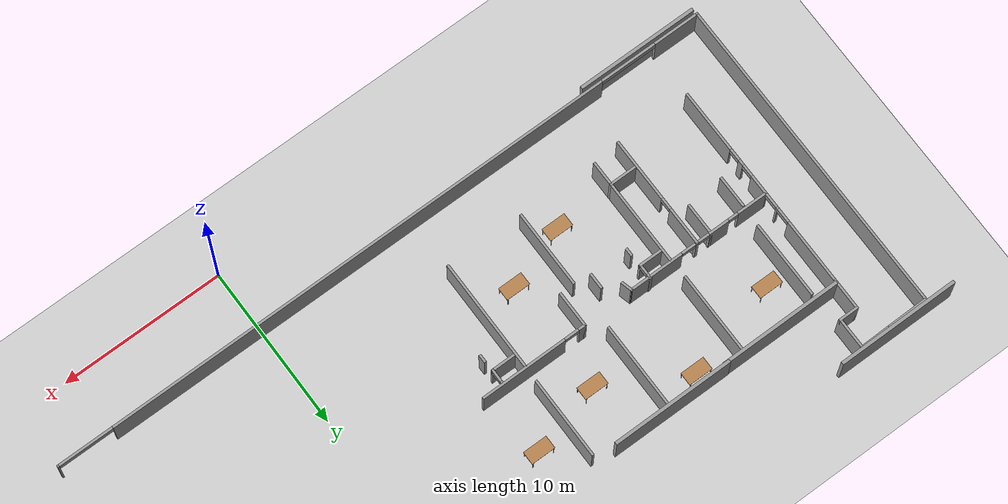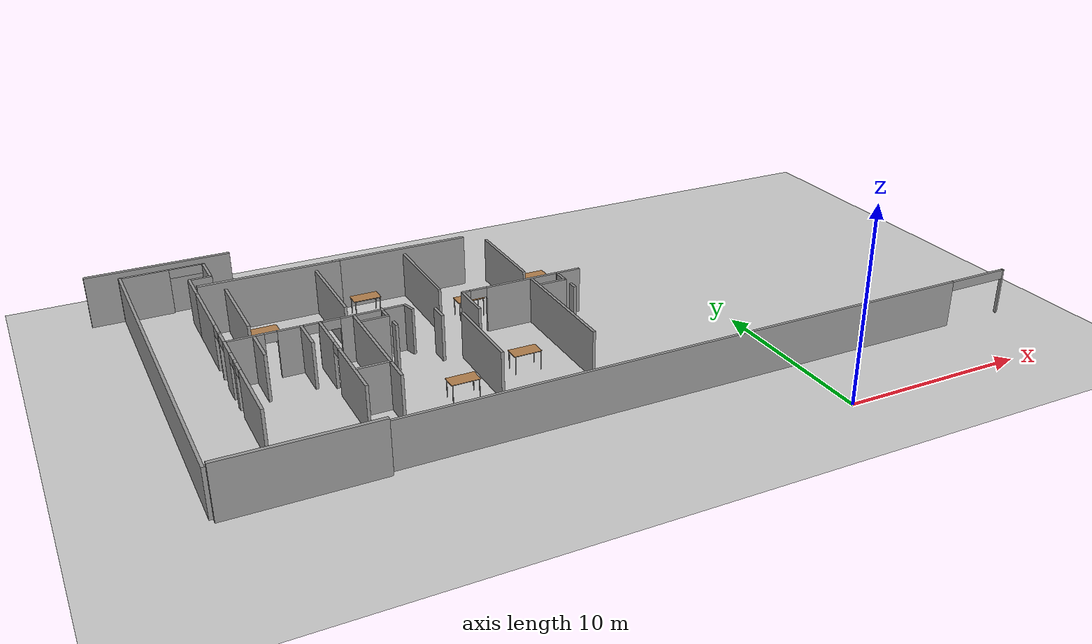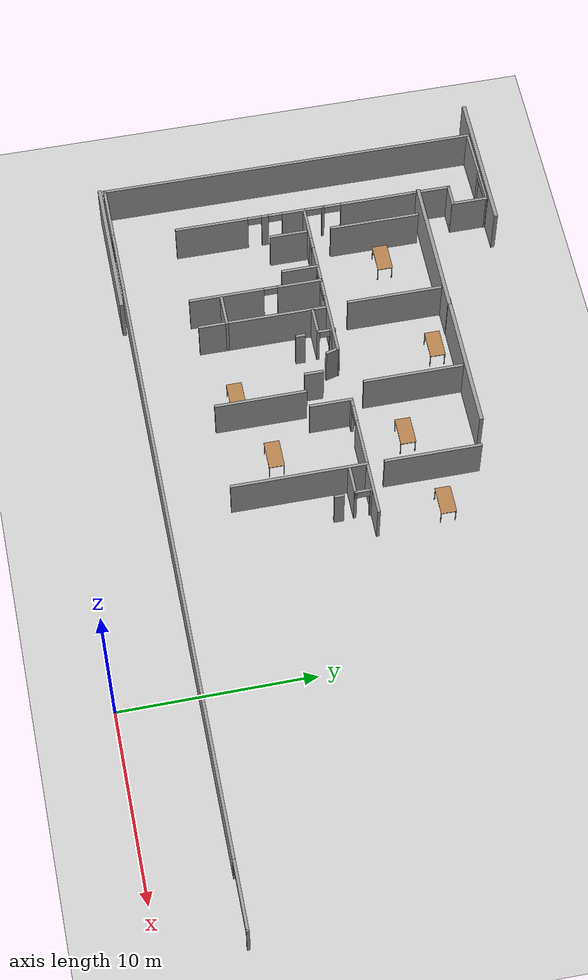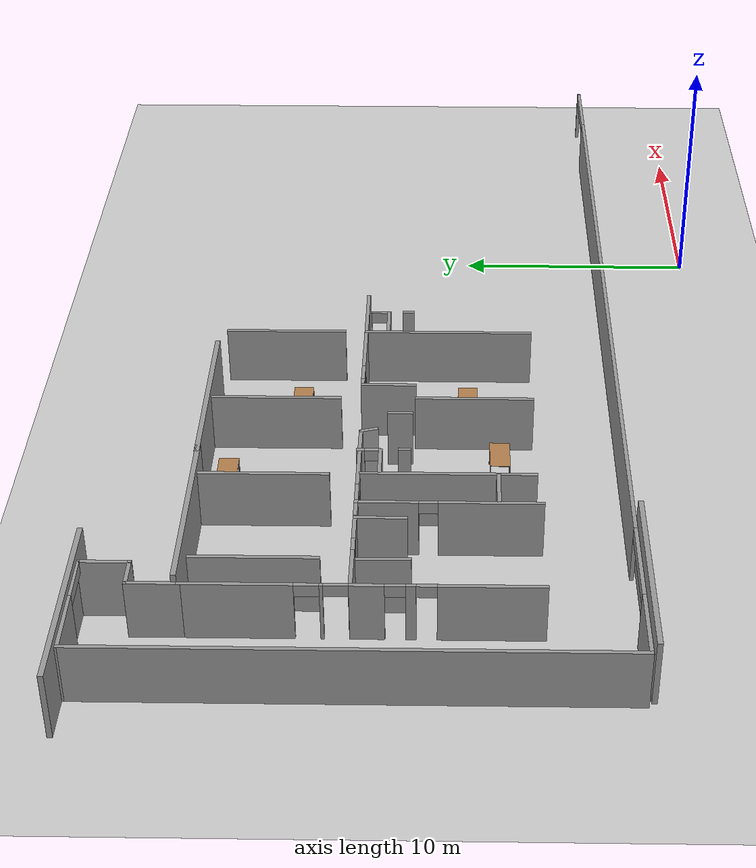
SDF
<sdf version="1.6">
 <world name="default">
  <model name="ground_plane">
   <static>1</static>
   <link name="link">
    <collision name="collision">
     <geometry><plane><normal>0 0 1</normal><size>100 100</size></plane></geometry>
     <surface><friction><ode><mu>100</mu><mu2>50</mu2></ode></friction></surface>
    </collision>
    <visual name="visual">
     <cast_shadows>0</cast_shadows>
     <geometry><plane><normal>0 0 1</normal><size>100 100</size></plane></geometry>
     <material>
      <script><uri>file://media/materials/scripts/gazebo.material</uri><name>Gazebo/Grey</name></script>
     </material>
    </visual>
   </link>
  </model>
  <model name="fin_se1f1.sdf">
   <pose>1.83798 -2.38449 0.2 0 -0 0</pose>
   <link name="Wall_0">
    <collision name="Wall_0_Collision">
     <geometry><box><size>20 0.15 2.5</size></box></geometry>
     <pose>0 0 1.25 0 -0 0</pose>
    </collision>
    <visual name="Wall_0_Visual">
     <pose>0 0 1.25 0 -0 0</pose>
     <geometry><box><size>20 0.15 2.5</size></box></geometry>
     <material>
      <script><uri>file://media/materials/scripts/gazebo.material</uri><name>Gazebo/Grey</name></script>
      <ambient>1 1 1 1</ambient>
     </material>
     <meta><layer>0</layer></meta>
    </visual>
    <pose>-30.7496 16.4496 0 0 0 -1.5708</pose>
   </link>
   <link name="Wall_1">
    <pose>-9.82457 6.52457 0 0 -0 0</pose>
    <visual name="Wall_1_Visual_0">
     <pose>-19.528 0 1.25 0 -0 0</pose>
     <geometry><box><size>2.94395 0.15 2.5</size></box></geometry>
     <material>
      <script><uri>file://media/materials/scripts/gazebo.material</uri><name>Gazebo/Grey</name></script>
      <ambient>1 1 1 1</ambient>
     </material>
     <meta><layer>0</layer></meta>
    </visual>
    <collision name="Wall_1_Collision_0">
     <geometry><box><size>2.94395 0.15 2.5</size></box></geometry>
     <pose>-19.528 0 1.25 0 -0 0</pose>
    </collision>
    <visual name="Wall_1_Visual_1">
     <pose>1.49202 0 1.25 0 -0 0</pose>
     <geometry><box><size>31.9924 0.15 2.5</size></box></geometry>
     <material>
      <script><uri>file://media/materials/scripts/gazebo.material</uri><name>Gazebo/Grey</name></script>
      <ambient>1 1 1 1</ambient>
     </material>
     <meta><layer>0</layer></meta>
    </visual>
    <collision name="Wall_1_Collision_1">
     <geometry><box><size>31.9924 0.15 2.5</size></box></geometry>
     <pose>1.49202 0 1.25 0 -0 0</pose>
    </collision>
    <visual name="Wall_1_Visual_2">
     <pose>20.9503 0 1.25 0 -0 0</pose>
     <geometry><box><size>0.099489 0.15 2.5</size></box></geometry>
     <material>
      <script><uri>file://media/materials/scripts/gazebo.material</uri><name>Gazebo/Grey</name></script>
      <ambient>1 1 1 1</ambient>
     </material>
     <meta><layer>0</layer></meta>
    </visual>
    <collision name="Wall_1_Collision_2">
     <geometry><box><size>0.099489 0.15 2.5</size></box></geometry>
     <pose>20.9503 0 1.25 0 -0 0</pose>
    </collision>
    <visual name="Wall_1_Visual_3">
     <pose>-16.2801 0 2.25 0 -0 0</pose>
     <geometry><box><size>3.55186 0.15 0.5</size></box></geometry>
     <material>
      <script><uri>file://media/materials/scripts/gazebo.material</uri><name>Gazebo/Grey</name></script>
      <ambient>1 1 1 1</ambient>
     </material>
     <meta><layer>0</layer></meta>
    </visual>
    <collision name="Wall_1_Collision_3">
     <geometry><box><size>3.55186 0.15 0.5</size></box></geometry>
     <pose>-16.2801 0 2.25 0 -0 0</pose>
    </collision>
    <visual name="Wall_1_Visual_4">
     <pose>19.1944 0 2.25 0 -0 0</pose>
     <geometry><box><size>3.41229 0.15 0.5</size></box></geometry>
     <material>
      <script><uri>file://media/materials/scripts/gazebo.material</uri><name>Gazebo/Grey</name></script>
      <ambient>1 1 1 1</ambient>
     </material>
     <meta><layer>0</layer></meta>
    </visual>
    <collision name="Wall_1_Collision_4">
     <geometry><box><size>3.41229 0.15 0.5</size></box></geometry>
     <pose>19.1944 0 2.25 0 -0 0</pose>
    </collision>
   </link>
   <link name="Wall_100">
    <collision name="Wall_100_Collision">
     <geometry><box><size>2.25 0.15 2.5</size></box></geometry>
     <pose>0 0 1.25 0 -0 0</pose>
    </collision>
    <visual name="Wall_100_Visual">
     <pose>0 0 1.25 0 -0 0</pose>
     <geometry><box><size>2.25 0.15 2.5</size></box></geometry>
     <material>
      <script><uri>file://media/materials/scripts/gazebo.material</uri><name>Gazebo/Grey</name></script>
      <ambient>1 1 1 1</ambient>
     </material>
     <meta><layer>0</layer></meta>
    </visual>
    <pose>-15.464 15.7396 0 0 -0 1.5708</pose>
   </link>
   <link name="Wall_101">
    <pose>-12.164 16.7896 0 0 -0 0</pose>
    <visual name="Wall_101_Visual_0">
     <pose>-3.13147 0 1.25 0 -0 0</pose>
     <geometry><box><size>0.487063 0.15 2.5</size></box></geometry>
     <material>
      <script><uri>file://media/materials/scripts/gazebo.material</uri><name>Gazebo/Grey</name></script>
      <ambient>1 1 1 1</ambient>
     </material>
     <meta><layer>0</layer></meta>
    </visual>
    <collision name="Wall_101_Collision_0">
     <geometry><box><size>0.487063 0.15 2.5</size></box></geometry>
     <pose>-3.13147 0 1.25 0 -0 0</pose>
    </collision>
    <visual name="Wall_101_Visual_1">
     <pose>0.693532 0 1.25 0 -0 0</pose>
     <geometry><box><size>5.36294 0.15 2.5</size></box></geometry>
     <material>
      <script><uri>file://media/materials/scripts/gazebo.material</uri><name>Gazebo/Grey</name></script>
      <ambient>1 1 1 1</ambient>
     </material>
     <meta><layer>0</layer></meta>
    </visual>
    <collision name="Wall_101_Collision_1">
     <geometry><box><size>5.36294 0.15 2.5</size></box></geometry>
     <pose>0.693532 0 1.25 0 -0 0</pose>
    </collision>
    <visual name="Wall_101_Visual_2">
     <pose>-2.43794 0 2.25 0 -0 0</pose>
     <geometry><box><size>0.9 0.15 0.5</size></box></geometry>
     <material>
      <script><uri>file://media/materials/scripts/gazebo.material</uri><name>Gazebo/Grey</name></script>
      <ambient>1 1 1 1</ambient>
     </material>
     <meta><layer>0</layer></meta>
    </visual>
    <collision name="Wall_101_Collision_2">
     <geometry><box><size>0.9 0.15 0.5</size></box></geometry>
     <pose>-2.43794 0 2.25 0 -0 0</pose>
    </collision>
   </link>
   <link name="Wall_104">
    <collision name="Wall_104_Collision">
     <geometry><box><size>7 0.15 2.5</size></box></geometry>
     <pose>0 0 1.25 0 -0 0</pose>
    </collision>
    <visual name="Wall_104_Visual">
     <pose>0 0 1.25 0 -0 0</pose>
     <geometry><box><size>7 0.15 2.5</size></box></geometry>
     <material>
      <script><uri>file://media/materials/scripts/gazebo.material</uri><name>Gazebo/Grey</name></script>
      <ambient>1 1 1 1</ambient>
     </material>
     <meta><layer>0</layer></meta>
    </visual>
    <pose>-11.6118 13.3512 0 0 0 -1.5708</pose>
   </link>
   <link name="Wall_114">
    <collision name="Wall_114_Collision">
     <geometry><box><size>2 0.15 2.5</size></box></geometry>
     <pose>0 0 1.25 0 -0 0</pose>
    </collision>
    <visual name="Wall_114_Visual">
     <pose>0 0 1.25 0 -0 0</pose>
     <geometry><box><size>2 0.15 2.5</size></box></geometry>
     <material>
      <script><uri>file://media/materials/scripts/gazebo.material</uri><name>Gazebo/Grey</name></script>
      <ambient>1 1 1 1</ambient>
     </material>
     <meta><layer>0</layer></meta>
    </visual>
    <pose>-26.1645 15.6146 0 0 -0 1.5708</pose>
   </link>
   <link name="Wall_116">
    <collision name="Wall_116_Collision">
     <geometry><box><size>2 0.15 2.5</size></box></geometry>
     <pose>0 0 1.25 0 -0 0</pose>
    </collision>
    <visual name="Wall_116_Visual">
     <pose>0 0 1.25 0 -0 0</pose>
     <geometry><box><size>2 0.15 2.5</size></box></geometry>
     <material>
      <script><uri>file://media/materials/scripts/gazebo.material</uri><name>Gazebo/Grey</name></script>
      <ambient>1 1 1 1</ambient>
     </material>
     <meta><layer>0</layer></meta>
    </visual>
    <pose>-23.8638 15.7977 0 0 0 -1.5708</pose>
   </link>
   <link name="Wall_118">
    <collision name="Wall_118_Collision">
     <geometry><box><size>1.75 0.15 2.5</size></box></geometry>
     <pose>0 0 1.25 0 -0 0</pose>
    </collision>
    <visual name="Wall_118_Visual">
     <pose>0 0 1.25 0 -0 0</pose>
     <geometry><box><size>1.75 0.15 2.5</size></box></geometry>
     <material>
      <script><uri>file://media/materials/scripts/gazebo.material</uri><name>Gazebo/Grey</name></script>
      <ambient>1 1 1 1</ambient>
     </material>
     <meta><layer>0</layer></meta>
    </visual>
    <pose>-22.0422 11.426 0 0 -0 3.14159</pose>
   </link>
   <link name="Wall_120">
    <pose>-19.7977 16.3512 0 0 0 -1.5708</pose>
    <visual name="Wall_120_Visual_0">
     <pose>-0.341993 0 1.25 0 -0 0</pose>
     <geometry><box><size>0.316013 0.15 2.5</size></box></geometry>
     <material>
      <script><uri>file://media/materials/scripts/gazebo.material</uri><name>Gazebo/Grey</name></script>
      <ambient>1 1 1 1</ambient>
     </material>
     <meta><layer>0</layer></meta>
    </visual>
    <collision name="Wall_120_Collision_0">
     <geometry><box><size>0.316013 0.15 2.5</size></box></geometry>
     <pose>-0.341993 0 1.25 0 -0 0</pose>
    </collision>
    <visual name="Wall_120_Visual_1">
     <pose>0.158007 0 2.25 0 -0 0</pose>
     <geometry><box><size>0.683987 0.15 0.5</size></box></geometry>
     <material>
      <script><uri>file://media/materials/scripts/gazebo.material</uri><name>Gazebo/Grey</name></script>
      <ambient>1 1 1 1</ambient>
     </material>
     <meta><layer>0</layer></meta>
    </visual>
    <collision name="Wall_120_Collision_1">
     <geometry><box><size>0.683987 0.15 0.5</size></box></geometry>
     <pose>0.158007 0 2.25 0 -0 0</pose>
    </collision>
   </link>
   <link name="Wall_121">
    <collision name="Wall_121_Collision">
     <geometry><box><size>1.5 0.15 2.5</size></box></geometry>
     <pose>0 0 1.25 0 -0 0</pose>
    </collision>
    <visual name="Wall_121_Visual">
     <pose>0 0 1.25 0 -0 0</pose>
     <geometry><box><size>1.5 0.15 2.5</size></box></geometry>
     <material>
      <script><uri>file://media/materials/scripts/gazebo.material</uri><name>Gazebo/Grey</name></script>
      <ambient>1 1 1 1</ambient>
     </material>
     <meta><layer>0</layer></meta>
    </visual>
    <pose>-20.4727 15.9262 0 0 -0 3.14159</pose>
   </link>
   <link name="Wall_123">
    <collision name="Wall_123_Collision">
     <geometry><box><size>0.5 0.15 2.5</size></box></geometry>
     <pose>0 0 1.25 0 -0 0</pose>
    </collision>
    <visual name="Wall_123_Visual">
     <pose>0 0 1.25 0 -0 0</pose>
     <geometry><box><size>0.5 0.15 2.5</size></box></geometry>
     <material>
      <script><uri>file://media/materials/scripts/gazebo.material</uri><name>Gazebo/Grey</name></script>
      <ambient>1 1 1 1</ambient>
     </material>
     <meta><layer>0</layer></meta>
    </visual>
    <pose>-19.7442 14.9961 0 0 0 -1.5708</pose>
   </link>
   <link name="Wall_125">
    <collision name="Wall_125_Collision">
     <geometry><box><size>1 0.15 2.5</size></box></geometry>
     <pose>0 0 1.25 0 -0 0</pose>
    </collision>
    <visual name="Wall_125_Visual">
     <pose>0 0 1.25 0 -0 0</pose>
     <geometry><box><size>1 0.15 2.5</size></box></geometry>
     <material>
      <script><uri>file://media/materials/scripts/gazebo.material</uri><name>Gazebo/Grey</name></script>
      <ambient>1 1 1 1</ambient>
     </material>
     <meta><layer>0</layer></meta>
    </visual>
    <pose>-17.39 15.2276 0 0 0 -1.5708</pose>
   </link>
   <link name="Wall_127">
    <pose>-10.1137 16.2977 0 0 0 -1.5708</pose>
    <visual name="Wall_127_Visual_0">
     <pose>-0.408972 0 1.25 0 -0 0</pose>
     <geometry><box><size>0.182055 0.15 2.5</size></box></geometry>
     <material>
      <script><uri>file://media/materials/scripts/gazebo.material</uri><name>Gazebo/Grey</name></script>
      <ambient>1 1 1 1</ambient>
     </material>
     <meta><layer>0</layer></meta>
    </visual>
    <collision name="Wall_127_Collision_0">
     <geometry><box><size>0.182055 0.15 2.5</size></box></geometry>
     <pose>-0.408972 0 1.25 0 -0 0</pose>
    </collision>
    <visual name="Wall_127_Visual_1">
     <pose>0.480687 0 1.25 0 -0 0</pose>
     <geometry><box><size>0.038626 0.15 2.5</size></box></geometry>
     <material>
      <script><uri>file://media/materials/scripts/gazebo.material</uri><name>Gazebo/Grey</name></script>
      <ambient>1 1 1 1</ambient>
     </material>
     <meta><layer>0</layer></meta>
    </visual>
    <collision name="Wall_127_Collision_1">
     <geometry><box><size>0.038626 0.15 2.5</size></box></geometry>
     <pose>0.480687 0 1.25 0 -0 0</pose>
    </collision>
    <visual name="Wall_127_Visual_2">
     <pose>0.071714 0 2.25 0 -0 0</pose>
     <geometry><box><size>0.779319 0.15 0.5</size></box></geometry>
     <material>
      <script><uri>file://media/materials/scripts/gazebo.material</uri><name>Gazebo/Grey</name></script>
      <ambient>1 1 1 1</ambient>
     </material>
     <meta><layer>0</layer></meta>
    </visual>
    <collision name="Wall_127_Collision_2">
     <geometry><box><size>0.779319 0.15 0.5</size></box></geometry>
     <pose>0.071714 0 2.25 0 -0 0</pose>
    </collision>
   </link>
   <link name="Wall_128">
    <collision name="Wall_128_Collision">
     <geometry><box><size>1.5 0.15 2.5</size></box></geometry>
     <pose>0 0 1.25 0 -0 0</pose>
    </collision>
    <visual name="Wall_128_Visual">
     <pose>0 0 1.25 0 -0 0</pose>
     <geometry><box><size>1.5 0.15 2.5</size></box></geometry>
     <material>
      <script><uri>file://media/materials/scripts/gazebo.material</uri><name>Gazebo/Grey</name></script>
      <ambient>1 1 1 1</ambient>
     </material>
     <meta><layer>0</layer></meta>
    </visual>
    <pose>-10.7887 15.8727 0 0 -0 3.14159</pose>
   </link>
   <link name="Wall_130">
    <collision name="Wall_130_Collision">
     <geometry><box><size>0.5 0.15 2.5</size></box></geometry>
     <pose>0 0 1.25 0 -0 0</pose>
    </collision>
    <visual name="Wall_130_Visual">
     <pose>0 0 1.25 0 -0 0</pose>
     <geometry><box><size>0.5 0.15 2.5</size></box></geometry>
     <material>
      <script><uri>file://media/materials/scripts/gazebo.material</uri><name>Gazebo/Grey</name></script>
      <ambient>1 1 1 1</ambient>
     </material>
     <meta><layer>0</layer></meta>
    </visual>
    <pose>-10.0602 15.0496 0 0 0 -1.5708</pose>
   </link>
   <link name="Wall_23">
    <collision name="Wall_23_Collision">
     <geometry><box><size>2 0.15 2.5</size></box></geometry>
     <pose>0 0 1.25 0 -0 0</pose>
    </collision>
    <visual name="Wall_23_Visual">
     <pose>0 0 1.25 0 -0 0</pose>
     <geometry><box><size>2 0.15 2.5</size></box></geometry>
     <material>
      <script><uri>file://media/materials/scripts/gazebo.material</uri><name>Gazebo/Grey</name></script>
      <ambient>1 1 1 1</ambient>
     </material>
     <meta><layer>0</layer></meta>
    </visual>
    <pose>-27.5496 23.6496 0 0 -0 1.5708</pose>
   </link>
   <link name="Wall_24">
    <collision name="Wall_24_Collision">
     <geometry><box><size>1.25 0.15 2.5</size></box></geometry>
     <pose>0 0 1.25 0 -0 0</pose>
    </collision>
    <visual name="Wall_24_Visual">
     <pose>0 0 1.25 0 -0 0</pose>
     <geometry><box><size>1.25 0.15 2.5</size></box></geometry>
     <material>
      <script><uri>file://media/materials/scripts/gazebo.material</uri><name>Gazebo/Grey</name></script>
      <ambient>1 1 1 1</ambient>
     </material>
     <meta><layer>0</layer></meta>
    </visual>
    <pose>-26.9996 24.5746 0 0 -0 0</pose>
   </link>
   <link name="Wall_25">
    <collision name="Wall_25_Collision">
     <geometry><box><size>2 0.15 2.5</size></box></geometry>
     <pose>0 0 1.25 0 -0 0</pose>
    </collision>
    <visual name="Wall_25_Visual">
     <pose>0 0 1.25 0 -0 0</pose>
     <geometry><box><size>2 0.15 2.5</size></box></geometry>
     <material>
      <script><uri>file://media/materials/scripts/gazebo.material</uri><name>Gazebo/Grey</name></script>
      <ambient>1 1 1 1</ambient>
     </material>
     <meta><layer>0</layer></meta>
    </visual>
    <pose>-26.4496 25.4996 0 0 -0 1.5708</pose>
   </link>
   <link name="Wall_27">
    <pose>-28.5996 26.3996 0 0 0 -3.12996</pose>
    <visual name="Wall_27_Visual_0">
     <pose>-2.20066 0 1.25 0 -0 0</pose>
     <geometry><box><size>0.048973 0.15 2.5</size></box></geometry>
     <material>
      <script><uri>file://media/materials/scripts/gazebo.material</uri><name>Gazebo/Grey</name></script>
      <ambient>1 1 1 1</ambient>
     </material>
     <meta><layer>0</layer></meta>
    </visual>
    <collision name="Wall_27_Collision_0">
     <geometry><box><size>0.048973 0.15 2.5</size></box></geometry>
     <pose>-2.20066 0 1.25 0 -0 0</pose>
    </collision>
    <visual name="Wall_27_Visual_1">
     <pose>0.939694 0 1.25 0 -0 0</pose>
     <geometry><box><size>2.5709 0.15 2.5</size></box></geometry>
     <material>
      <script><uri>file://media/materials/scripts/gazebo.material</uri><name>Gazebo/Grey</name></script>
      <ambient>1 1 1 1</ambient>
     </material>
     <meta><layer>0</layer></meta>
    </visual>
    <collision name="Wall_27_Collision_1">
     <geometry><box><size>2.5709 0.15 2.5</size></box></geometry>
     <pose>0.939694 0 1.25 0 -0 0</pose>
    </collision>
    <visual name="Wall_27_Visual_2">
     <pose>-1.26096 0 2.25 0 -0 0</pose>
     <geometry><box><size>1.83041 0.15 0.5</size></box></geometry>
     <material>
      <script><uri>file://media/materials/scripts/gazebo.material</uri><name>Gazebo/Grey</name></script>
      <ambient>1 1 1 1</ambient>
     </material>
     <meta><layer>0</layer></meta>
    </visual>
    <collision name="Wall_27_Collision_2">
     <geometry><box><size>1.83041 0.15 0.5</size></box></geometry>
     <pose>-1.26096 0 2.25 0 -0 0</pose>
    </collision>
   </link>
   <link name="Wall_29">
    <pose>-27.5496 16.2996 0 0 0 -1.5708</pose>
    <visual name="Wall_29_Visual_0">
     <pose>-4.45394 0 1.25 0 -0 0</pose>
     <geometry><box><size>4.09211 0.15 2.5</size></box></geometry>
     <material>
      <script><uri>file://media/materials/scripts/gazebo.material</uri><name>Gazebo/Grey</name></script>
      <ambient>1 1 1 1</ambient>
     </material>
     <meta><layer>0</layer></meta>
    </visual>
    <collision name="Wall_29_Collision_0">
     <geometry><box><size>4.09211 0.15 2.5</size></box></geometry>
     <pose>-4.45394 0 1.25 0 -0 0</pose>
    </collision>
    <visual name="Wall_29_Visual_1">
     <pose>-1.44499 0 1.25 0 -0 0</pose>
     <geometry><box><size>0.125793 0.15 2.5</size></box></geometry>
     <material>
      <script><uri>file://media/materials/scripts/gazebo.material</uri><name>Gazebo/Grey</name></script>
      <ambient>1 1 1 1</ambient>
     </material>
     <meta><layer>0</layer></meta>
    </visual>
    <collision name="Wall_29_Collision_1">
     <geometry><box><size>0.125793 0.15 2.5</size></box></geometry>
     <pose>-1.44499 0 1.25 0 -0 0</pose>
    </collision>
    <visual name="Wall_29_Visual_2">
     <pose>0.143983 0 1.25 0 -0 0</pose>
     <geometry><box><size>1.25215 0.15 2.5</size></box></geometry>
     <material>
      <script><uri>file://media/materials/scripts/gazebo.material</uri><name>Gazebo/Grey</name></script>
      <ambient>1 1 1 1</ambient>
     </material>
     <meta><layer>0</layer></meta>
    </visual>
    <collision name="Wall_29_Collision_2">
     <geometry><box><size>1.25215 0.15 2.5</size></box></geometry>
     <pose>0.143983 0 1.25 0 -0 0</pose>
    </collision>
    <visual name="Wall_29_Visual_3">
     <pose>1.69273 0 1.25 0 -0 0</pose>
     <geometry><box><size>0.367155 0.15 2.5</size></box></geometry>
     <material>
      <script><uri>file://media/materials/scripts/gazebo.material</uri><name>Gazebo/Grey</name></script>
      <ambient>1 1 1 1</ambient>
     </material>
     <meta><layer>0</layer></meta>
    </visual>
    <collision name="Wall_29_Collision_3">
     <geometry><box><size>0.367155 0.15 2.5</size></box></geometry>
     <pose>1.69273 0 1.25 0 -0 0</pose>
    </collision>
    <visual name="Wall_29_Visual_4">
     <pose>4.5577 0 1.25 0 -0 0</pose>
     <geometry><box><size>3.8846 0.15 2.5</size></box></geometry>
     <material>
      <script><uri>file://media/materials/scripts/gazebo.material</uri><name>Gazebo/Grey</name></script>
      <ambient>1 1 1 1</ambient>
     </material>
     <meta><layer>0</layer></meta>
    </visual>
    <collision name="Wall_29_Collision_4">
     <geometry><box><size>3.8846 0.15 2.5</size></box></geometry>
     <pose>4.5577 0 1.25 0 -0 0</pose>
    </collision>
    <visual name="Wall_29_Visual_5">
     <pose>-1.95789 0 2.25 0 -0 0</pose>
     <geometry><box><size>0.9 0.15 0.5</size></box></geometry>
     <material>
      <script><uri>file://media/materials/scripts/gazebo.material</uri><name>Gazebo/Grey</name></script>
      <ambient>1 1 1 1</ambient>
     </material>
     <meta><layer>0</layer></meta>
    </visual>
    <collision name="Wall_29_Collision_5">
     <geometry><box><size>0.9 0.15 0.5</size></box></geometry>
     <pose>-1.95789 0 2.25 0 -0 0</pose>
    </collision>
    <visual name="Wall_29_Visual_6">
     <pose>-0.932093 0 2.25 0 -0 0</pose>
     <geometry><box><size>0.9 0.15 0.5</size></box></geometry>
     <material>
      <script><uri>file://media/materials/scripts/gazebo.material</uri><name>Gazebo/Grey</name></script>
      <ambient>1 1 1 1</ambient>
     </material>
     <meta><layer>0</layer></meta>
    </visual>
    <collision name="Wall_29_Collision_6">
     <geometry><box><size>0.9 0.15 0.5</size></box></geometry>
     <pose>-0.932093 0 2.25 0 -0 0</pose>
    </collision>
    <visual name="Wall_29_Visual_7">
     <pose>1.1396 0 2.25 0 -0 0</pose>
     <geometry><box><size>0.739091 0.15 0.5</size></box></geometry>
     <material>
      <script><uri>file://media/materials/scripts/gazebo.material</uri><name>Gazebo/Grey</name></script>
      <ambient>1 1 1 1</ambient>
     </material>
     <meta><layer>0</layer></meta>
    </visual>
    <collision name="Wall_29_Collision_7">
     <geometry><box><size>0.739091 0.15 0.5</size></box></geometry>
     <pose>1.1396 0 2.25 0 -0 0</pose>
    </collision>
    <visual name="Wall_29_Visual_8">
     <pose>2.24585 0 2.25 0 -0 0</pose>
     <geometry><box><size>0.739091 0.15 0.5</size></box></geometry>
     <material>
      <script><uri>file://media/materials/scripts/gazebo.material</uri><name>Gazebo/Grey</name></script>
      <ambient>1 1 1 1</ambient>
     </material>
     <meta><layer>0</layer></meta>
    </visual>
    <collision name="Wall_29_Collision_8">
     <geometry><box><size>0.739091 0.15 0.5</size></box></geometry>
     <pose>2.24585 0 2.25 0 -0 0</pose>
    </collision>
   </link>
   <link name="Wall_67">
    <collision name="Wall_67_Collision">
     <geometry><box><size>4.75 0.15 2.5</size></box></geometry>
     <pose>0 0 1.25 0 -0 0</pose>
    </collision>
    <visual name="Wall_67_Visual">
     <pose>0 0 1.25 0 -0 0</pose>
     <geometry><box><size>4.75 0.15 2.5</size></box></geometry>
     <material>
      <script><uri>file://media/materials/scripts/gazebo.material</uri><name>Gazebo/Grey</name></script>
      <ambient>1 1 1 1</ambient>
     </material>
     <meta><layer>0</layer></meta>
    </visual>
    <pose>-26.1152 20.2344 0 0 0 -1.5708</pose>
   </link>
   <link name="Wall_82">
    <collision name="Wall_82_Collision">
     <geometry><box><size>5 0.15 2.5</size></box></geometry>
     <pose>0 0 1.25 0 -0 0</pose>
    </collision>
    <visual name="Wall_82_Visual">
     <pose>0 0 1.25 0 -0 0</pose>
     <geometry><box><size>5 0.15 2.5</size></box></geometry>
     <material>
      <script><uri>file://media/materials/scripts/gazebo.material</uri><name>Gazebo/Grey</name></script>
      <ambient>1 1 1 1</ambient>
     </material>
     <meta><layer>0</layer></meta>
    </visual>
    <pose>-11.5946 20.1602 0 0 -0 1.5708</pose>
   </link>
   <link name="Wall_84">
    <collision name="Wall_84_Collision">
     <geometry><box><size>5.25 0.15 2.5</size></box></geometry>
     <pose>0 0 1.25 0 -0 0</pose>
    </collision>
    <visual name="Wall_84_Visual">
     <pose>0 0 1.25 0 -0 0</pose>
     <geometry><box><size>5.25 0.15 2.5</size></box></geometry>
     <material>
      <script><uri>file://media/materials/scripts/gazebo.material</uri><name>Gazebo/Grey</name></script>
      <ambient>1 1 1 1</ambient>
     </material>
     <meta><layer>0</layer></meta>
    </visual>
    <pose>-16.3938 20.2305 0 0 0 -1.5708</pose>
   </link>
   <link name="Wall_86">
    <collision name="Wall_86_Collision">
     <geometry><box><size>5 0.15 2.5</size></box></geometry>
     <pose>0 0 1.25 0 -0 0</pose>
    </collision>
    <visual name="Wall_86_Visual">
     <pose>0 0 1.25 0 -0 0</pose>
     <geometry><box><size>5 0.15 2.5</size></box></geometry>
     <material>
      <script><uri>file://media/materials/scripts/gazebo.material</uri><name>Gazebo/Grey</name></script>
      <ambient>1 1 1 1</ambient>
     </material>
     <meta><layer>0</layer></meta>
    </visual>
    <pose>-21.316 20.294 0 0 0 -1.5708</pose>
   </link>
   <link name="Wall_91">
    <pose>-23.0235 16.7227 0 0 -0 0</pose>
    <visual name="Wall_91_Visual_0">
     <pose>-3.57417 0 1.25 0 -0 0</pose>
     <geometry><box><size>1.85166 0.15 2.5</size></box></geometry>
     <material>
      <script><uri>file://media/materials/scripts/gazebo.material</uri><name>Gazebo/Grey</name></script>
      <ambient>1 1 1 1</ambient>
     </material>
     <meta><layer>0</layer></meta>
    </visual>
    <collision name="Wall_91_Collision_0">
     <geometry><box><size>1.85166 0.15 2.5</size></box></geometry>
     <pose>-3.57417 0 1.25 0 -0 0</pose>
    </collision>
    <visual name="Wall_91_Visual_1">
     <pose>-1.38374 0 1.25 0 -0 0</pose>
     <geometry><box><size>1.29238 0.15 2.5</size></box></geometry>
     <material>
      <script><uri>file://media/materials/scripts/gazebo.material</uri><name>Gazebo/Grey</name></script>
      <ambient>1 1 1 1</ambient>
     </material>
     <meta><layer>0</layer></meta>
    </visual>
    <collision name="Wall_91_Collision_1">
     <geometry><box><size>1.29238 0.15 2.5</size></box></geometry>
     <pose>-1.38374 0 1.25 0 -0 0</pose>
    </collision>
    <visual name="Wall_91_Visual_2">
     <pose>0.094604 0 1.25 0 -0 0</pose>
     <geometry><box><size>0.186132 0.15 2.5</size></box></geometry>
     <material>
      <script><uri>file://media/materials/scripts/gazebo.material</uri><name>Gazebo/Grey</name></script>
      <ambient>1 1 1 1</ambient>
     </material>
     <meta><layer>0</layer></meta>
    </visual>
    <collision name="Wall_91_Collision_2">
     <geometry><box><size>0.186132 0.15 2.5</size></box></geometry>
     <pose>0.094604 0 1.25 0 -0 0</pose>
    </collision>
    <visual name="Wall_91_Visual_3">
     <pose>2.79384 0 1.25 0 -0 0</pose>
     <geometry><box><size>3.41233 0.15 2.5</size></box></geometry>
     <material>
      <script><uri>file://media/materials/scripts/gazebo.material</uri><name>Gazebo/Grey</name></script>
      <ambient>1 1 1 1</ambient>
     </material>
     <meta><layer>0</layer></meta>
    </visual>
    <collision name="Wall_91_Collision_3">
     <geometry><box><size>3.41233 0.15 2.5</size></box></geometry>
     <pose>2.79384 0 1.25 0 -0 0</pose>
    </collision>
    <visual name="Wall_91_Visual_4">
     <pose>-2.33914 0 2.25 0 -0 0</pose>
     <geometry><box><size>0.61841 0.15 0.5</size></box></geometry>
     <material>
      <script><uri>file://media/materials/scripts/gazebo.material</uri><name>Gazebo/Grey</name></script>
      <ambient>1 1 1 1</ambient>
     </material>
     <meta><layer>0</layer></meta>
    </visual>
    <collision name="Wall_91_Collision_4">
     <geometry><box><size>0.61841 0.15 0.5</size></box></geometry>
     <pose>-2.33914 0 2.25 0 -0 0</pose>
    </collision>
    <visual name="Wall_91_Visual_5">
     <pose>-0.368008 0 2.25 0 -0 0</pose>
     <geometry><box><size>0.739091 0.15 0.5</size></box></geometry>
     <material>
      <script><uri>file://media/materials/scripts/gazebo.material</uri><name>Gazebo/Grey</name></script>
      <ambient>1 1 1 1</ambient>
     </material>
     <meta><layer>0</layer></meta>
    </visual>
    <collision name="Wall_91_Collision_5">
     <geometry><box><size>0.739091 0.15 0.5</size></box></geometry>
     <pose>-0.368008 0 2.25 0 -0 0</pose>
    </collision>
    <visual name="Wall_91_Visual_6">
     <pose>0.637671 0 2.25 0 -0 0</pose>
     <geometry><box><size>0.9 0.15 0.5</size></box></geometry>
     <material>
      <script><uri>file://media/materials/scripts/gazebo.material</uri><name>Gazebo/Grey</name></script>
      <ambient>1 1 1 1</ambient>
     </material>
     <meta><layer>0</layer></meta>
    </visual>
    <collision name="Wall_91_Collision_6">
     <geometry><box><size>0.9 0.15 0.5</size></box></geometry>
     <pose>0.637671 0 2.25 0 -0 0</pose>
    </collision>
   </link>
   <link name="Wall_92">
    <collision name="Wall_92_Collision">
     <geometry><box><size>0.75 0.15 2.5</size></box></geometry>
     <pose>0 0 1.25 0 -0 0</pose>
    </collision>
    <visual name="Wall_92_Visual">
     <pose>0 0 1.25 0 -0 0</pose>
     <geometry><box><size>0.75 0.15 2.5</size></box></geometry>
     <material>
      <script><uri>file://media/materials/scripts/gazebo.material</uri><name>Gazebo/Grey</name></script>
      <ambient>1 1 1 1</ambient>
     </material>
     <meta><layer>0</layer></meta>
    </visual>
    <pose>-18.5209 16.4329 0 0 0 -1.309</pose>
   </link>
   <link name="Wall_94">
    <collision name="Wall_94_Collision">
     <geometry><box><size>6.75 0.15 2.5</size></box></geometry>
     <pose>0 0 1.25 0 -0 0</pose>
    </collision>
    <visual name="Wall_94_Visual">
     <pose>0 0 1.25 0 -0 0</pose>
     <geometry><box><size>6.75 0.15 2.5</size></box></geometry>
     <material>
      <script><uri>file://media/materials/scripts/gazebo.material</uri><name>Gazebo/Grey</name></script>
      <ambient>1 1 1 1</ambient>
     </material>
     <meta><layer>0</layer></meta>
    </visual>
    <pose>-21.2422 13.3157 0 0 0 -1.5708</pose>
   </link>
   <link name="Wall_96">
    <pose>-22.9543 13.2442 0 0 0 -1.5708</pose>
    <visual name="Wall_96_Visual_0">
     <pose>-2.32948 0 1.25 0 -0 0</pose>
     <geometry><box><size>2.34105 0.15 2.5</size></box></geometry>
     <material>
      <script><uri>file://media/materials/scripts/gazebo.material</uri><name>Gazebo/Grey</name></script>
      <ambient>1 1 1 1</ambient>
     </material>
     <meta><layer>0</layer></meta>
    </visual>
    <collision name="Wall_96_Collision_0">
     <geometry><box><size>2.34105 0.15 2.5</size></box></geometry>
     <pose>-2.32948 0 1.25 0 -0 0</pose>
    </collision>
    <visual name="Wall_96_Visual_1">
     <pose>1.53001 0 1.25 0 -0 0</pose>
     <geometry><box><size>3.93998 0.15 2.5</size></box></geometry>
     <material>
      <script><uri>file://media/materials/scripts/gazebo.material</uri><name>Gazebo/Grey</name></script>
      <ambient>1 1 1 1</ambient>
     </material>
     <meta><layer>0</layer></meta>
    </visual>
    <collision name="Wall_96_Collision_1">
     <geometry><box><size>3.93998 0.15 2.5</size></box></geometry>
     <pose>1.53001 0 1.25 0 -0 0</pose>
    </collision>
    <visual name="Wall_96_Visual_2">
     <pose>-0.799464 0 2.25 0 -0 0</pose>
     <geometry><box><size>0.718978 0.15 0.5</size></box></geometry>
     <material>
      <script><uri>file://media/materials/scripts/gazebo.material</uri><name>Gazebo/Grey</name></script>
      <ambient>1 1 1 1</ambient>
     </material>
     <meta><layer>0</layer></meta>
    </visual>
    <collision name="Wall_96_Collision_2">
     <geometry><box><size>0.718978 0.15 0.5</size></box></geometry>
     <pose>-0.799464 0 2.25 0 -0 0</pose>
    </collision>
   </link>
   <link name="Wall_98">
    <collision name="Wall_98_Collision">
     <geometry><box><size>4.75 0.15 2.5</size></box></geometry>
     <pose>0 0 1.25 0 -0 0</pose>
    </collision>
    <visual name="Wall_98_Visual">
     <pose>0 0 1.25 0 -0 0</pose>
     <geometry><box><size>4.75 0.15 2.5</size></box></geometry>
     <material>
      <script><uri>file://media/materials/scripts/gazebo.material</uri><name>Gazebo/Grey</name></script>
      <ambient>1 1 1 1</ambient>
     </material>
     <meta><layer>0</layer></meta>
    </visual>
    <pose>-16.3735 12.2826 0 0 0 -1.5708</pose>
   </link>
   <static>1</static>
  </model>
  <model name="table">
   <static>1</static>
   <link name="link">
    <collision name="surface">
     <pose>0 0 1 0 -0 0</pose>
     <geometry><box><size>1.5 0.8 0.03</size></box></geometry>
     <surface><friction><ode><mu>0.6</mu><mu2>0.6</mu2></ode></friction></surface>
    </collision>
    <visual name="visual1">
     <pose>0 0 1 0 -0 0</pose>
     <geometry><box><size>1.5 0.8 0.03</size></box></geometry>
     <material>
      <script><uri>file://media/materials/scripts/gazebo.material</uri><name>Gazebo/Wood</name></script>
     </material>
    </visual>
    <collision name="front_left_leg">
     <pose>0.68 0.38 0.5 0 -0 0</pose>
     <geometry><cylinder><radius>0.02</radius><length>1</length></cylinder></geometry>
    </collision>
    <visual name="front_left_leg">
     <pose>0.68 0.38 0.5 0 -0 0</pose>
     <geometry><cylinder><radius>0.02</radius><length>1</length></cylinder></geometry>
     <material>
      <script><uri>file://media/materials/scripts/gazebo.material</uri><name>Gazebo/Grey</name></script>
     </material>
    </visual>
    <collision name="front_right_leg">
     <pose>0.68 -0.38 0.5 0 -0 0</pose>
     <geometry><cylinder><radius>0.02</radius><length>1</length></cylinder></geometry>
    </collision>
    <visual name="front_right_leg">
     <pose>0.68 -0.38 0.5 0 -0 0</pose>
     <geometry><cylinder><radius>0.02</radius><length>1</length></cylinder></geometry>
     <material>
      <script><uri>file://media/materials/scripts/gazebo.material</uri><name>Gazebo/Grey</name></script>
     </material>
    </visual>
    <collision name="back_right_leg">
     <pose>-0.68 -0.38 0.5 0 -0 0</pose>
     <geometry><cylinder><radius>0.02</radius><length>1</length></cylinder></geometry>
    </collision>
    <visual name="back_right_leg">
     <pose>-0.68 -0.38 0.5 0 -0 0</pose>
     <geometry><cylinder><radius>0.02</radius><length>1</length></cylinder></geometry>
     <material>
      <script><uri>file://media/materials/scripts/gazebo.material</uri><name>Gazebo/Grey</name></script>
     </material>
    </visual>
    <collision name="back_left_leg">
     <pose>-0.68 0.38 0.5 0 -0 0</pose>
     <geometry><cylinder><radius>0.02</radius><length>1</length></cylinder></geometry>
    </collision>
    <visual name="back_left_leg">
     <pose>-0.68 0.38 0.5 0 -0 0</pose>
     <geometry><cylinder><radius>0.02</radius><length>1</length></cylinder></geometry>
     <material>
      <script><uri>file://media/materials/scripts/gazebo.material</uri><name>Gazebo/Grey</name></script>
     </material>
    </visual>
   </link>
   <pose>-23.0593 18.0717 0 0 -0 0</pose>
  </model>
  <model name="table_0">
   <static>1</static>
   <link name="link">
    <collision name="surface">
     <pose>0 0 1 0 -0 0</pose>
     <geometry><box><size>1.5 0.8 0.03</size></box></geometry>
     <surface><friction><ode><mu>0.6</mu><mu2>0.6</mu2></ode></friction></surface>
    </collision>
    <visual name="visual1">
     <pose>0 0 1 0 -0 0</pose>
     <geometry><box><size>1.5 0.8 0.03</size></box></geometry>
     <material>
      <script><uri>file://media/materials/scripts/gazebo.material</uri><name>Gazebo/Wood</name></script>
     </material>
    </visual>
    <collision name="front_left_leg">
     <pose>0.68 0.38 0.5 0 -0 0</pose>
     <geometry><cylinder><radius>0.02</radius><length>1</length></cylinder></geometry>
    </collision>
    <visual name="front_left_leg">
     <pose>0.68 0.38 0.5 0 -0 0</pose>
     <geometry><cylinder><radius>0.02</radius><length>1</length></cylinder></geometry>
     <material>
      <script><uri>file://media/materials/scripts/gazebo.material</uri><name>Gazebo/Grey</name></script>
     </material>
    </visual>
    <collision name="front_right_leg">
     <pose>0.68 -0.38 0.5 0 -0 0</pose>
     <geometry><cylinder><radius>0.02</radius><length>1</length></cylinder></geometry>
    </collision>
    <visual name="front_right_leg">
     <pose>0.68 -0.38 0.5 0 -0 0</pose>
     <geometry><cylinder><radius>0.02</radius><length>1</length></cylinder></geometry>
     <material>
      <script><uri>file://media/materials/scripts/gazebo.material</uri><name>Gazebo/Grey</name></script>
     </material>
    </visual>
    <collision name="back_right_leg">
     <pose>-0.68 -0.38 0.5 0 -0 0</pose>
     <geometry><cylinder><radius>0.02</radius><length>1</length></cylinder></geometry>
    </collision>
    <visual name="back_right_leg">
     <pose>-0.68 -0.38 0.5 0 -0 0</pose>
     <geometry><cylinder><radius>0.02</radius><length>1</length></cylinder></geometry>
     <material>
      <script><uri>file://media/materials/scripts/gazebo.material</uri><name>Gazebo/Grey</name></script>
     </material>
    </visual>
    <collision name="back_left_leg">
     <pose>-0.68 0.38 0.5 0 -0 0</pose>
     <geometry><cylinder><radius>0.02</radius><length>1</length></cylinder></geometry>
    </collision>
    <visual name="back_left_leg">
     <pose>-0.68 0.38 0.5 0 -0 0</pose>
     <geometry><cylinder><radius>0.02</radius><length>1</length></cylinder></geometry>
     <material>
      <script><uri>file://media/materials/scripts/gazebo.material</uri><name>Gazebo/Grey</name></script>
     </material>
    </visual>
   </link>
   <pose>-17.1552 19.6086 0 0 -0 0</pose>
  </model>
  <model name="table_1">
   <static>1</static>
   <link name="link">
    <collision name="surface">
     <pose>0 0 1 0 -0 0</pose>
     <geometry><box><size>1.5 0.8 0.03</size></box></geometry>
     <surface><friction><ode><mu>0.6</mu><mu2>0.6</mu2></ode></friction></surface>
    </collision>
    <visual name="visual1">
     <pose>0 0 1 0 -0 0</pose>
     <geometry><box><size>1.5 0.8 0.03</size></box></geometry>
     <material>
      <script><uri>file://media/materials/scripts/gazebo.material</uri><name>Gazebo/Wood</name></script>
     </material>
    </visual>
    <collision name="front_left_leg">
     <pose>0.68 0.38 0.5 0 -0 0</pose>
     <geometry><cylinder><radius>0.02</radius><length>1</length></cylinder></geometry>
    </collision>
    <visual name="front_left_leg">
     <pose>0.68 0.38 0.5 0 -0 0</pose>
     <geometry><cylinder><radius>0.02</radius><length>1</length></cylinder></geometry>
     <material>
      <script><uri>file://media/materials/scripts/gazebo.material</uri><name>Gazebo/Grey</name></script>
     </material>
    </visual>
    <collision name="front_right_leg">
     <pose>0.68 -0.38 0.5 0 -0 0</pose>
     <geometry><cylinder><radius>0.02</radius><length>1</length></cylinder></geometry>
    </collision>
    <visual name="front_right_leg">
     <pose>0.68 -0.38 0.5 0 -0 0</pose>
     <geometry><cylinder><radius>0.02</radius><length>1</length></cylinder></geometry>
     <material>
      <script><uri>file://media/materials/scripts/gazebo.material</uri><name>Gazebo/Grey</name></script>
     </material>
    </visual>
    <collision name="back_right_leg">
     <pose>-0.68 -0.38 0.5 0 -0 0</pose>
     <geometry><cylinder><radius>0.02</radius><length>1</length></cylinder></geometry>
    </collision>
    <visual name="back_right_leg">
     <pose>-0.68 -0.38 0.5 0 -0 0</pose>
     <geometry><cylinder><radius>0.02</radius><length>1</length></cylinder></geometry>
     <material>
      <script><uri>file://media/materials/scripts/gazebo.material</uri><name>Gazebo/Grey</name></script>
     </material>
    </visual>
    <collision name="back_left_leg">
     <pose>-0.68 0.38 0.5 0 -0 0</pose>
     <geometry><cylinder><radius>0.02</radius><length>1</length></cylinder></geometry>
    </collision>
    <visual name="back_left_leg">
     <pose>-0.68 0.38 0.5 0 -0 0</pose>
     <geometry><cylinder><radius>0.02</radius><length>1</length></cylinder></geometry>
     <material>
      <script><uri>file://media/materials/scripts/gazebo.material</uri><name>Gazebo/Grey</name></script>
     </material>
    </visual>
   </link>
   <pose>-12.2601 16.9623 0 0 -0 0</pose>
  </model>
  <model name="table_2">
   <static>1</static>
   <link name="link">
    <collision name="surface">
     <pose>0 0 1 0 -0 0</pose>
     <geometry><box><size>1.5 0.8 0.03</size></box></geometry>
     <surface><friction><ode><mu>0.6</mu><mu2>0.6</mu2></ode></friction></surface>
    </collision>
    <visual name="visual1">
     <pose>0 0 1 0 -0 0</pose>
     <geometry><box><size>1.5 0.8 0.03</size></box></geometry>
     <material>
      <script><uri>file://media/materials/scripts/gazebo.material</uri><name>Gazebo/Wood</name></script>
     </material>
    </visual>
    <collision name="front_left_leg">
     <pose>0.68 0.38 0.5 0 -0 0</pose>
     <geometry><cylinder><radius>0.02</radius><length>1</length></cylinder></geometry>
    </collision>
    <visual name="front_left_leg">
     <pose>0.68 0.38 0.5 0 -0 0</pose>
     <geometry><cylinder><radius>0.02</radius><length>1</length></cylinder></geometry>
     <material>
      <script><uri>file://media/materials/scripts/gazebo.material</uri><name>Gazebo/Grey</name></script>
     </material>
    </visual>
    <collision name="front_right_leg">
     <pose>0.68 -0.38 0.5 0 -0 0</pose>
     <geometry><cylinder><radius>0.02</radius><length>1</length></cylinder></geometry>
    </collision>
    <visual name="front_right_leg">
     <pose>0.68 -0.38 0.5 0 -0 0</pose>
     <geometry><cylinder><radius>0.02</radius><length>1</length></cylinder></geometry>
     <material>
      <script><uri>file://media/materials/scripts/gazebo.material</uri><name>Gazebo/Grey</name></script>
     </material>
    </visual>
    <collision name="back_right_leg">
     <pose>-0.68 -0.38 0.5 0 -0 0</pose>
     <geometry><cylinder><radius>0.02</radius><length>1</length></cylinder></geometry>
    </collision>
    <visual name="back_right_leg">
     <pose>-0.68 -0.38 0.5 0 -0 0</pose>
     <geometry><cylinder><radius>0.02</radius><length>1</length></cylinder></geometry>
     <material>
      <script><uri>file://media/materials/scripts/gazebo.material</uri><name>Gazebo/Grey</name></script>
     </material>
    </visual>
    <collision name="back_left_leg">
     <pose>-0.68 0.38 0.5 0 -0 0</pose>
     <geometry><cylinder><radius>0.02</radius><length>1</length></cylinder></geometry>
    </collision>
    <visual name="back_left_leg">
     <pose>-0.68 0.38 0.5 0 -0 0</pose>
     <geometry><cylinder><radius>0.02</radius><length>1</length></cylinder></geometry>
     <material>
      <script><uri>file://media/materials/scripts/gazebo.material</uri><name>Gazebo/Grey</name></script>
     </material>
    </visual>
   </link>
   <pose>-15.9954 8.87778 0 0 -0 0</pose>
  </model>
  <model name="table_3">
   <static>1</static>
   <link name="link">
    <collision name="surface">
     <pose>0 0 1 0 -0 0</pose>
     <geometry><box><size>1.5 0.8 0.03</size></box></geometry>
     <surface><friction><ode><mu>0.6</mu><mu2>0.6</mu2></ode></friction></surface>
    </collision>
    <visual name="visual1">
     <pose>0 0 1 0 -0 0</pose>
     <geometry><box><size>1.5 0.8 0.03</size></box></geometry>
     <material>
      <script><uri>file://media/materials/scripts/gazebo.material</uri><name>Gazebo/Wood</name></script>
     </material>
    </visual>
    <collision name="front_left_leg">
     <pose>0.68 0.38 0.5 0 -0 0</pose>
     <geometry><cylinder><radius>0.02</radius><length>1</length></cylinder></geometry>
    </collision>
    <visual name="front_left_leg">
     <pose>0.68 0.38 0.5 0 -0 0</pose>
     <geometry><cylinder><radius>0.02</radius><length>1</length></cylinder></geometry>
     <material>
      <script><uri>file://media/materials/scripts/gazebo.material</uri><name>Gazebo/Grey</name></script>
     </material>
    </visual>
    <collision name="front_right_leg">
     <pose>0.68 -0.38 0.5 0 -0 0</pose>
     <geometry><cylinder><radius>0.02</radius><length>1</length></cylinder></geometry>
    </collision>
    <visual name="front_right_leg">
     <pose>0.68 -0.38 0.5 0 -0 0</pose>
     <geometry><cylinder><radius>0.02</radius><length>1</length></cylinder></geometry>
     <material>
      <script><uri>file://media/materials/scripts/gazebo.material</uri><name>Gazebo/Grey</name></script>
     </material>
    </visual>
    <collision name="back_right_leg">
     <pose>-0.68 -0.38 0.5 0 -0 0</pose>
     <geometry><cylinder><radius>0.02</radius><length>1</length></cylinder></geometry>
    </collision>
    <visual name="back_right_leg">
     <pose>-0.68 -0.38 0.5 0 -0 0</pose>
     <geometry><cylinder><radius>0.02</radius><length>1</length></cylinder></geometry>
     <material>
      <script><uri>file://media/materials/scripts/gazebo.material</uri><name>Gazebo/Grey</name></script>
     </material>
    </visual>
    <collision name="back_left_leg">
     <pose>-0.68 0.38 0.5 0 -0 0</pose>
     <geometry><cylinder><radius>0.02</radius><length>1</length></cylinder></geometry>
    </collision>
    <visual name="back_left_leg">
     <pose>-0.68 0.38 0.5 0 -0 0</pose>
     <geometry><cylinder><radius>0.02</radius><length>1</length></cylinder></geometry>
     <material>
      <script><uri>file://media/materials/scripts/gazebo.material</uri><name>Gazebo/Grey</name></script>
     </material>
    </visual>
   </link>
   <pose>-12.1812 10.1292 0 0 -0 0</pose>
  </model>
  <model name="table_5">
   <static>1</static>
   <link name="link">
    <collision name="surface">
     <pose>0 0 1 0 -0 0</pose>
     <geometry><box><size>1.5 0.8 0.03</size></box></geometry>
     <surface><friction><ode><mu>0.6</mu><mu2>0.6</mu2></ode></friction></surface>
    </collision>
    <visual name="visual1">
     <pose>0 0 1 0 -0 0</pose>
     <geometry><box><size>1.5 0.8 0.03</size></box></geometry>
     <material>
      <script><uri>file://media/materials/scripts/gazebo.material</uri><name>Gazebo/Wood</name></script>
     </material>
    </visual>
    <collision name="front_left_leg">
     <pose>0.68 0.38 0.5 0 -0 0</pose>
     <geometry><cylinder><radius>0.02</radius><length>1</length></cylinder></geometry>
    </collision>
    <visual name="front_left_leg">
     <pose>0.68 0.38 0.5 0 -0 0</pose>
     <geometry><cylinder><radius>0.02</radius><length>1</length></cylinder></geometry>
     <material>
      <script><uri>file://media/materials/scripts/gazebo.material</uri><name>Gazebo/Grey</name></script>
     </material>
    </visual>
    <collision name="front_right_leg">
     <pose>0.68 -0.38 0.5 0 -0 0</pose>
     <geometry><cylinder><radius>0.02</radius><length>1</length></cylinder></geometry>
    </collision>
    <visual name="front_right_leg">
     <pose>0.68 -0.38 0.5 0 -0 0</pose>
     <geometry><cylinder><radius>0.02</radius><length>1</length></cylinder></geometry>
     <material>
      <script><uri>file://media/materials/scripts/gazebo.material</uri><name>Gazebo/Grey</name></script>
     </material>
    </visual>
    <collision name="back_right_leg">
     <pose>-0.68 -0.38 0.5 0 -0 0</pose>
     <geometry><cylinder><radius>0.02</radius><length>1</length></cylinder></geometry>
    </collision>
    <visual name="back_right_leg">
     <pose>-0.68 -0.38 0.5 0 -0 0</pose>
     <geometry><cylinder><radius>0.02</radius><length>1</length></cylinder></geometry>
     <material>
      <script><uri>file://media/materials/scripts/gazebo.material</uri><name>Gazebo/Grey</name></script>
     </material>
    </visual>
    <collision name="back_left_leg">
     <pose>-0.68 0.38 0.5 0 -0 0</pose>
     <geometry><cylinder><radius>0.02</radius><length>1</length></cylinder></geometry>
    </collision>
    <visual name="back_left_leg">
     <pose>-0.68 0.38 0.5 0 -0 0</pose>
     <geometry><cylinder><radius>0.02</radius><length>1</length></cylinder></geometry>
     <material>
      <script><uri>file://media/materials/scripts/gazebo.material</uri><name>Gazebo/Grey</name></script>
     </material>
    </visual>
   </link>
   <pose>-7.90698 18.0796 0 0 -0 0</pose>
  </model>
  <model name="grey_wall_5">
   <static>1</static>
   <link name="link">
    <pose>0 0 1.4 0 -0 0</pose>
    <collision name="collision"><geometry><box><size>7.5 0.2 2.8</size></box></geometry></collision>
    <visual name="visual">
     <cast_shadows>0</cast_shadows>
     <geometry><box><size>7.5 0.2 2.8</size></box></geometry>
     <material>
      <script>
       <uri>model://grey_wall/materials/scripts</uri>
       <uri>model://grey_wall/materials/textures</uri>
       <name>vrc/grey_wall</name>
      </script>
     </material>
    </visual>
   </link>
   <pose>-14.7742 20.5265 0.2 0 -0 0</pose>
  </model>
  <model name="grey_wall_6">
   <static>1</static>
   <link name="link">
    <pose>0 0 1.4 0 -0 0</pose>
    <collision name="collision"><geometry><box><size>7.5 0.2 2.8</size></box></geometry></collision>
    <visual name="visual">
     <cast_shadows>0</cast_shadows>
     <geometry><box><size>7.5 0.2 2.8</size></box></geometry>
     <material>
      <script>
       <uri>model://grey_wall/materials/scripts</uri>
       <uri>model://grey_wall/materials/textures</uri>
       <name>vrc/grey_wall</name>
      </script>
     </material>
    </visual>
   </link>
   <pose>-21.8975 20.5037 0.2 0 -0 0</pose>
  </model>
  <model name="grey_wall_7">
   <static>1</static>
   <link name="link">
    <pose>0 0 1.4 0 -0 0</pose>
    <collision name="collision"><geometry><box><size>7.5 0.2 2.8</size></box></geometry></collision>
    <visual name="visual">
     <cast_shadows>0</cast_shadows>
     <geometry><box><size>7.5 0.2 2.8</size></box></geometry>
     <material>
      <script>
       <uri>model://grey_wall/materials/scripts</uri>
       <uri>model://grey_wall/materials/textures</uri>
       <name>vrc/grey_wall</name>
      </script>
     </material>
    </visual>
   </link>
   <pose>-26.8992 24.1666 0.2 0 -0 0</pose>
  </model>
  <model name="grey_wall_8">
   <static>1</static>
   <link name="link">
    <pose>0 0 1.4 0 -0 0</pose>
    <collision name="collision"><geometry><box><size>7.5 0.2 2.8</size></box></geometry></collision>
    <visual name="visual">
     <cast_shadows>0</cast_shadows>
     <geometry><box><size>7.5 0.2 2.8</size></box></geometry>
     <material>
      <script>
       <uri>model://grey_wall/materials/scripts</uri>
       <uri>model://grey_wall/materials/textures</uri>
       <name>vrc/grey_wall</name>
      </script>
     </material>
    </visual>
   </link>
   <pose>-25.0622 3.87322 0.2 0 -0 0</pose>
  </model>
 </world>
</sdf>
